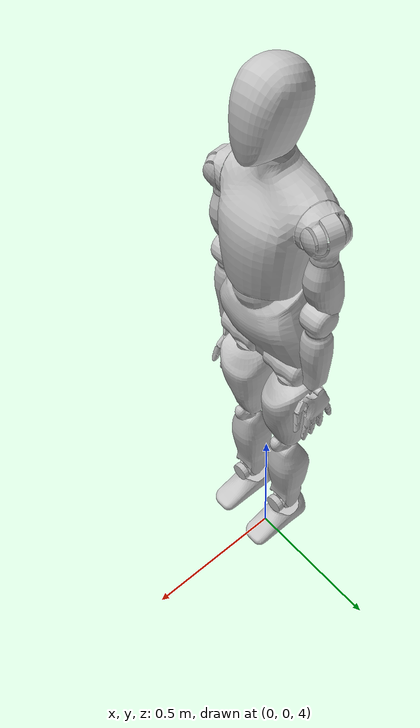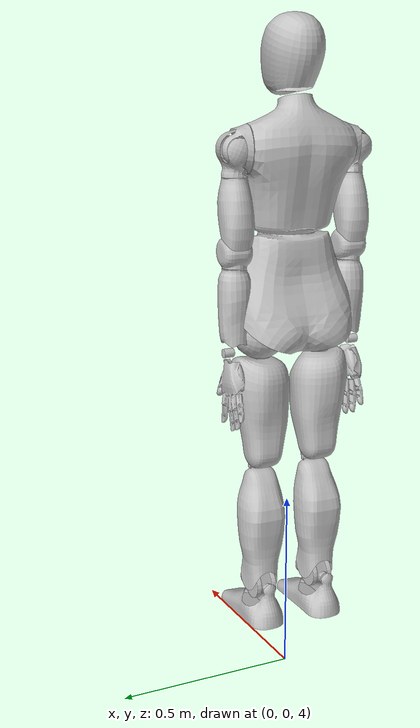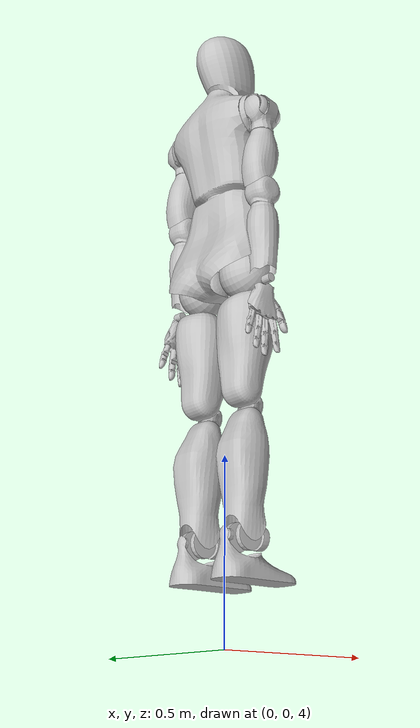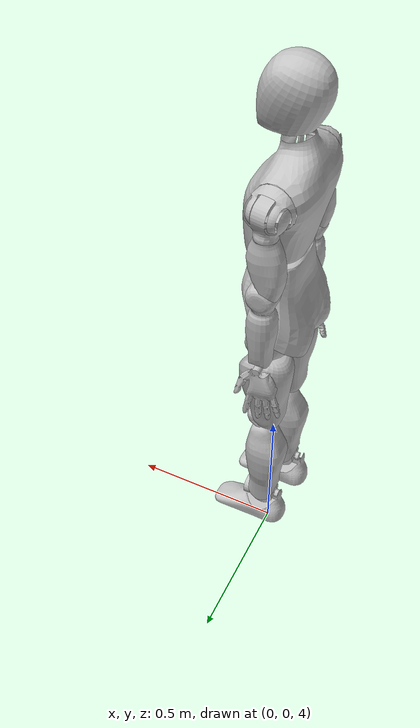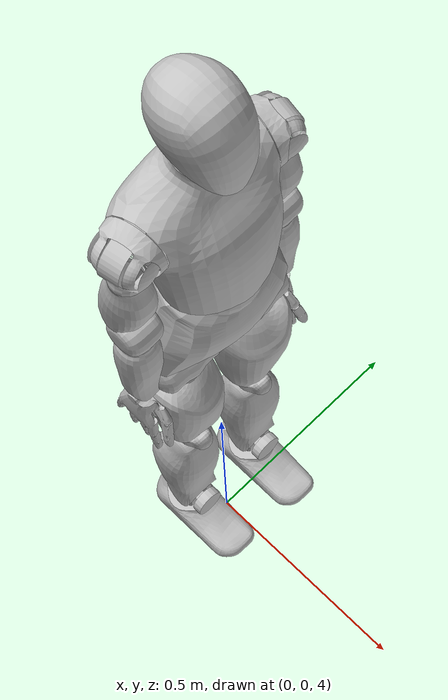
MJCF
<mujoco model="neo_beta">
  <default>
      <geom solref="0.01 0.9" solimp="0.8 0.9 0.01" friction="1.0 0.05 0.001"/>
  </default>
  <option integrator="RK4" iterations="50"/>
  <compiler angle="radian" meshdir="./meshes/lod1/"/>
 <asset>
    <mesh name="PelvisCover" file="PelvisCover.obj" scale="1e-05 1e-05 1e-05"/>
    <mesh name="RightHipCover" file="RightHipCover.obj" scale="1e-05 1e-05 1e-05"/>
    <mesh name="RightThighCover" file="RightThighCover.obj" scale="1e-05 1e-05 1e-05"/>
    <mesh name="RightKneecapCover" file="RightKneecapCover.obj" scale="1e-05 1e-05 1e-05"/>
    <mesh name="RightShinCover" file="RightShinCover.obj" scale="1e-05 1e-05 1e-05"/>
    <mesh name="RightAnkleCovers" file="RightAnkleCovers.obj" scale="1e-05 1e-05 1e-05"/>
    <mesh name="RightFootCover" file="RightFootCover.obj" scale="1e-05 1e-05 1e-05"/>
    <mesh name="LeftHipCover" file="LeftHipCover.obj" scale="1e-05 1e-05 1e-05"/>
    <mesh name="LeftThighCover" file="LeftThighCover.obj" scale="1e-05 1e-05 1e-05"/>
    <mesh name="LeftKneecapCover" file="LeftKneecapCover.obj" scale="1e-05 1e-05 1e-05"/>
    <mesh name="LeftShinCover" file="LeftShinCover.obj" scale="1e-05 1e-05 1e-05"/>
    <mesh name="LeftAnkleCovers" file="LeftAnkleCovers.obj" scale="1e-05 1e-05 1e-05"/>
    <mesh name="LeftFootCover" file="LeftFootCover.obj" scale="1e-05 1e-05 1e-05"/>
    <mesh name="TorsoCover" file="TorsoCover.obj" scale="1e-05 1e-05 1e-05"/>
    <mesh name="RightScapulaCover" file="RightScapulaCover.obj" scale="1e-05 1e-05 1e-05"/>
    <mesh name="RightShoulderCover" file="RightShoulderCover.obj" scale="1e-05 1e-05 1e-05"/>
    <mesh name="RightUpperArmCover" file="RightUpperArmCover.obj" scale="1e-05 1e-05 1e-05"/>
    <mesh name="RightElbowCover" file="RightElbowCover.obj" scale="1e-05 1e-05 1e-05"/>
    <mesh name="RightLowerArmCover" file="RightLowerArmCover.obj" scale="1e-05 1e-05 1e-05"/>
    <mesh name="RightHand" file="RightHand.obj" scale="0.01 0.01 0.01"/>
    <mesh name="LeftScapulaCover" file="LeftScapulaCover.obj" scale="1e-05 1e-05 1e-05"/>
    <mesh name="LeftShoulderCover" file="LeftShoulderCover.obj" scale="1e-05 1e-05 1e-05"/>
    <mesh name="LeftUpperArmCover" file="LeftUpperArmCover.obj" scale="1e-05 1e-05 1e-05"/>
    <mesh name="LeftElbowCover" file="LeftElbowCover.obj" scale="1e-05 1e-05 1e-05"/>
    <mesh name="LeftLowerArmCover" file="LeftLowerArmCover.obj" scale="1e-05 1e-05 1e-05"/>
    <mesh name="LeftHand" file="LeftHand.obj" scale="0.01 0.01 0.01"/>
    <mesh name="Neck_Z_Cover" file="Neck_Z_Cover.obj" scale="1e-05 1e-05 1e-05"/>
    <mesh name="HeadCover_Combined" file="HeadCover_Combined.obj" scale="1e-05 1e-05 1e-05"/>
  </asset>

  <worldbody>
    <body name="link_pelvis" pos="0 0 5">
      <inertial pos="0.0073145 0.00199007 0.120851" quat="0.63988 0.76686 0.0324651 -0.0377523" mass="6.87077" diaginertia="0.0736053 0.0456795 0.0437648"/>
      <joint name="world_joint" type="free" limited="false" actuatorfrclimited="false"/>
      <geom type="mesh" rgba="0.752941 0.752941 0.752941 1" mesh="PelvisCover"/>
      <body name="link_r_upper_hip" pos="0 -0.0895 0">
        <inertial pos="-0.00766357 0.00071556 -0.00124386" quat="0.508392 0.488927 -0.498376 0.504092" mass="0.361073" diaginertia="0.000647876 0.000620611 0.000402843"/>
        <joint name="j_r_leg_hip_y" pos="0 0 0" axis="0 1 0" range="-1.8326 0.5236" actuatorfrcrange="-211.11 211.11"/>
        <geom type="mesh" rgba="0.752941 0.752941 0.752941 1" mesh="RightHipCover"/>
        <body name="link_r_lower_hip">
          <inertial pos="-0.0164355 -0.00059357 -0.0560469" quat="0.914258 0.0623084 -0.21343 -0.338671" mass="0.765414" diaginertia="0.00181477 0.00180724 0.000343865"/>
          <joint name="j_r_leg_hip_x" pos="0 0 0" axis="1 0 0" range="-0.7418 0.3927" actuatorfrcrange="-211.11 211.11"/>
          <body name="link_r_thigh">
            <inertial pos="-0.00369548 -0.00643054 -0.200002" quat="0.708472 0.0648774 -0.0359654 0.70183" mass="2.50609" diaginertia="0.0133149 0.0120923 0.0047201"/>
            <joint name="j_r_leg_hip_z" pos="0 0 0" axis="0 0 1" range="-0.7854 0.7854" actuatorfrcrange="-165.72 165.72"/>
            <geom type="mesh" rgba="0.752941 0.752941 0.752941 1" mesh="RightThighCover"/>
            <body name="link_r_patella" pos="-0.0145 0 -0.337">
              <inertial pos="0.00691184 0.00966885 -0.0220421" quat="0.696181 -0.0721002 -0.109761 0.705752" mass="0.295912" diaginertia="0.000537903 0.000478921 0.000127717"/>
              <joint name="j_r_leg_upperknee_y" pos="0 0 0" axis="0 1 0" range="-0.0873 1.7401" actuatorfrcrange="-231.87 231.87"/>
              <geom type="mesh" rgba="0.752941 0.752941 0.752941 1" mesh="RightKneecapCover"/>
              <body name="link_r_shin" pos="0.015 0 -0.092">
                <inertial pos="-0.0133649 0.00032171 -0.125637" quat="0.699596 0.00697769 0.00695481 0.714471" mass="2.59562" diaginertia="0.01992 0.0193467 0.00323459"/>
                <joint name="j_r_leg_lowerknee_y" pos="0 0 0" axis="0 1 0" range="-0.0513 1.0236" actuatorfrcrange="-185.49 185.49"/>
                <geom type="mesh" rgba="0.752941 0.752941 0.752941 1" mesh="RightShinCover"/>
                <body name="link_r_ankle" pos="-0.0155 0 -0.301">
                  <inertial pos="0.00331621 9.587e-05 -0.00258008" quat="0.00995169 0.706816 0.00972423 0.707261" mass="0.196791" diaginertia="0.000140871 0.000126849 3.01899e-05"/>
                  <joint name="j_r_ankle_y" pos="0 0 0" axis="0 1 0" range="-0.7854 0.6981" actuatorfrcrange="-276.02 276.02"/>
                  <geom type="mesh" rgba="0.752941 0.752941 0.752941 1" mesh="RightAnkleCovers"/>
                  <body name="link_r_foot">
                    <inertial pos="0.021541 0.00038918 -0.0772985" quat="0.457423 0.53338 0.540115 0.463191" mass="1.43586" diaginertia="0.00550513 0.00503884 0.0021677"/>
                    <joint name="j_r_ankle_x" pos="0 0 0" axis="1 0 0" range="-0.5236 0.5236" actuatorfrcrange="-169.92 169.92"/>
                    <geom pos="-0.0095 0 0" quat="1 0 0 0" type="mesh" rgba="0.752941 0.752941 0.752941 1" mesh="RightFootCover"/>
                    <site name="right_foot_geom_site" type="box" pos="0.05 0.0 -0.11" size="0.125 0.05 0.005" rgba="1 0 0 0"/>
                  </body>
                </body>
              </body>
            </body>
          </body>
        </body>
      </body>
      <body name="link_l_upper_hip" pos="0 0.0895 0">
        <inertial pos="-0.00766357 0.00071556 -0.00124386" quat="0.508392 0.488927 -0.498376 0.504092" mass="0.361073" diaginertia="0.000647876 0.000620611 0.000402843"/>
        <joint name="j_l_leg_hip_y" pos="0 0 0" axis="0 1 0" range="-1.8326 0.5236" actuatorfrcrange="-211.11 211.11"/>
        <geom type="mesh" rgba="0.752941 0.752941 0.752941 1" mesh="LeftHipCover"/>
        <body name="link_l_lower_hip">
          <inertial pos="-0.01651 0.00053942 -0.0559597" quat="0.923084 -0.0572306 -0.215327 0.313487" mass="0.769808" diaginertia="0.00183017 0.00182234 0.000345358"/>
          <joint name="j_l_leg_hip_x" pos="0 0 0" axis="1 0 0" range="-0.3927 0.7418" actuatorfrcrange="-211.11 211.11"/>
          <body name="link_l_thigh">
            <inertial pos="-0.00317825 0.00642675 -0.199717" quat="0.70707 -0.038761 0.0625968 0.7033" mass="2.50078" diaginertia="0.0133375 0.0121132 0.00471309"/>
            <joint name="j_l_leg_hip_z" pos="0 0 0" axis="0 0 1" range="-0.7854 0.7854" actuatorfrcrange="-165.72 165.72"/>
            <geom type="mesh" rgba="0.752941 0.752941 0.752941 1" mesh="LeftThighCover"/>
            <body name="link_l_patella" pos="-0.0145 0 -0.337">
              <inertial pos="0.00867652 -0.00967156 -0.0262857" quat="0.707507 -0.0860211 -0.0722719 0.697719" mass="0.280178" diaginertia="0.000508464 0.000459291 0.000123725"/>
              <joint name="j_l_leg_upperknee_y" pos="0 0 0" axis="0 1 0" range="-0.0873 1.7401" actuatorfrcrange="-231.87 231.87"/>
              <geom type="mesh" rgba="0.752941 0.752941 0.752941 1" mesh="LeftKneecapCover"/>
              <body name="link_l_shin" pos="0.015 0 -0.092">
                <inertial pos="-0.013228 -0.00023049 -0.124134" quat="0.708958 0.00926938 0.00714237 0.705154" mass="2.55274" diaginertia="0.0191882 0.0186053 0.00323647"/>
                <joint name="j_l_leg_lowerknee_y" pos="0 0 0" axis="0 1 0" range="-0.0513 1.0236" actuatorfrcrange="-185.49 185.49"/>
                <geom type="mesh" rgba="0.752941 0.752941 0.752941 1" mesh="LeftShinCover"/>
                <body name="link_l_ankle" pos="-0.0155 0 -0.301">
                  <inertial pos="0.00331621 -9.587e-05 -0.00258008" quat="-0.00995169 0.706816 -0.00972423 0.707261" mass="0.196791" diaginertia="0.000140871 0.000126849 3.01899e-05"/>
                  <joint name="j_l_ankle_y" pos="0 0 0" axis="0 1 0" range="-0.7854 0.6981" actuatorfrcrange="-276.02 276.02"/>
                  <geom type="mesh" rgba="0.752941 0.752941 0.752941 1" mesh="LeftAnkleCovers"/>
                  <body name="link_l_foot">
                    <inertial pos="0.0222222 -0.00034418 -0.0779496" quat="0.470407 0.533977 0.528741 0.462621" mass="1.42112" diaginertia="0.00536117 0.00495355 0.00210631"/>
                    <joint name="j_l_ankle_x" pos="0 0 0" axis="1 0 0" range="-0.5236 0.5236" actuatorfrcrange="-169.92 169.92"/>
                    <geom type="mesh" rgba="0.752941 0.752941 0.752941 1" mesh="LeftFootCover"/>
                    <site name="left_foot_geom_site" type="box" pos="0.05 0.0 -0.11" size="0.125 0.05 0.005" rgba="1 0 0 0"/>
                  </body>
                </body>
              </body>
            </body>
          </body>
        </body>
      </body>
      <body name="link_abdomen" pos="0.02216 0 0.243">
        <inertial pos="0.00070986 -0.0003245 0.0135796" quat="0.999708 -0.0160415 -0.0179914 -0.00169752" mass="0.262993" diaginertia="0.000186555 0.000130355 0.00010592"/>
        <joint name="j_torso_y" pos="0 0 0" axis="0 1 0" range="-0.0873 0.6981" actuatorfrcrange="-282.59 282.59"/>
        <body name="link_torso">
          <inertial pos="-0.0281692 -0.00096531 0.140662" quat="0.981972 0.0231882 -0.172496 -0.0737526" mass="6.26354" diaginertia="0.0434474 0.0375336 0.0340869"/>
          <joint name="j_torso_z" pos="0 0 0" axis="0 0 1" range="-1.0472 1.0472" actuatorfrcrange="-227.9 227.9"/>
          <geom type="mesh" rgba="0.752941 0.752941 0.752941 1" mesh="TorsoCover"/>
          <body name="link_r_scapula" pos="-0.03511 -0.1717 0.2377" quat="0.996195 0 0 0.0871543">
            <inertial pos="-0.0002307 0.0745582 0.00134092" quat="0.704281 0.70906 0.0219027 -0.0272377" mass="1.65249" diaginertia="0.0051238 0.00507641 0.00239145"/>
            <joint name="j_r_shoulder_y" pos="0 0 0" axis="0 1 0" range="-2.3562 1.0472" actuatorfrcrange="-103.77 103.77"/>
            <geom type="mesh" rgba="0.752941 0.752941 0.752941 1" mesh="RightScapulaCover"/>
            <body name="link_r_shoulder">
              <inertial pos="1.271e-05 -0.00169746 -0.021314" quat="0.706216 0.00253531 -0.00773158 0.707949" mass="0.226886" diaginertia="0.00026914 0.000208724 0.000126566"/>
              <joint name="j_r_shoulder_x" pos="0 0 0" axis="1 0 0" range="-2.0944 0.0873" actuatorfrcrange="-133.43 133.43"/>
              <geom type="mesh" rgba="0.752941 0.752941 0.752941 1" mesh="RightShoulderCover"/>
              <body name="link_r_upper_arm" quat="0.996195 0 0 -0.0871543">
                <inertial pos="-0.00399127 -3.687e-05 -0.158461" quat="0.708463 0.0104449 0.0113308 0.70558" mass="1.12649" diaginertia="0.00515168 0.00499262 0.000754445"/>
                <joint name="j_r_shoulder_z" pos="0 0 0" axis="0 0 1" range="-0.5236 1.6581" actuatorfrcrange="-104.24 104.24"/>
                <geom type="mesh" rgba="0.752941 0.752941 0.752941 1" mesh="RightUpperArmCover"/>
                <body name="link_r_elbow" pos="0 0 -0.263">
                  <inertial pos="-0.00050533 1.761e-05 -0.013781" quat="0.999969 -0.0007112 -0.00786327 -2.55364e-05" mass="0.157484" diaginertia="0.000130541 0.00011477 8.66591e-05"/>
                  <joint name="j_r_elbow_y" pos="0 0 0" axis="0 1 0" range="-2.0944 0" actuatorfrcrange="-95.41 95.41"/>
                  <geom type="mesh" rgba="0.752941 0.752941 0.752941 1" mesh="RightElbowCover"/>
                  <body name="link_r_lower_arm">
                    <inertial pos="0.00020952 6.849e-05 -0.147053" quat="0.999674 0.000917821 -0.00232824 0.02539" mass="1.191" diaginertia="0.00525646 0.00519075 0.000632024"/>
                    <joint name="j_r_elbow_z" pos="0 0 0" axis="0 0 1" range="-1.5708 0.7854" actuatorfrcrange="-60.12 60.12"/>
                    <geom type="mesh" rgba="0.752941 0.752941 0.752941 1" mesh="RightLowerArmCover"/>
                    <body name="link_r_wrist" pos="0 0 -0.268">
                      <inertial pos="0.00033557 0.00378767 0.00628441" quat="0.716106 -0.0453887 -0.044902 0.695065" mass="0.0271772" diaginertia="4.34089e-06 3.33681e-06 2.86229e-06"/>
                      <joint name="j_r_wrist_x" pos="0 0 0" axis="1 0 0" range="-0.5236 1.5708" actuatorfrcrange="-29.35 29.35"/>
                      <body name="link_r_hand" pos="0 0 0" quat="1 0 0 0">
                        <inertial pos="-0.0018672 -0.0074707 -0.0883994" quat="0.662518 0.0559941 0.0786707 0.742795" mass="0.624148" diaginertia="0.00198743 0.00146689 0.000624887"/>
                        <joint name="j_r_wrist_y" pos="0 0 0" axis="0 1 0" range="-0.2618 0.7854" actuatorfrcrange="-27.51 27.51"/>
                        <geom pos="0 0 0" quat="0.999048 0 0.0436194 0" type="mesh" rgba="0.752941 0.752941 0.752941 1" mesh="RightHand"/>
                      </body>
                    </body>
                  </body>
                </body>
              </body>
            </body>
          </body>
          <body name="link_l_scapula" pos="-0.03511 0.1717 0.2377" quat="0.996195 0 0 -0.0871543">
            <inertial pos="0.00017228 -0.0743468 0.00130844" quat="0.707248 0.703402 -0.0531302 0.0469346" mass="1.65555" diaginertia="0.00514273 0.00509914 0.00239101"/>
            <joint name="j_l_shoulder_y" pos="0 0 0" axis="0 1 0" range="-2.3562 1.0472" actuatorfrcrange="-103.77 103.77"/>
            <geom type="mesh" rgba="0.752941 0.752941 0.752941 1" mesh="LeftScapulaCover"/>
            <body name="link_l_shoulder">
              <inertial pos="0.00014092 0.00179768 -0.0213055" quat="0.706611 -0.0073569 0.00263855 0.707559" mass="0.228031" diaginertia="0.000269149 0.000209084 0.000126928"/>
              <joint name="j_l_shoulder_x" pos="0 0 0" axis="1 0 0" range="-0.0873 2.0944" actuatorfrcrange="-133.43 133.43"/>
              <geom type="mesh" rgba="0.752941 0.752941 0.752941 1" mesh="LeftShoulderCover"/>
              <body name="link_l_upper_arm" quat="0.996195 0 0 0.0871543">
                <inertial pos="-0.00423068 -4.654e-05 -0.159021" quat="0.690223 0.0104642 0.0105461 0.723444" mass="1.12429" diaginertia="0.00523963 0.00507581 0.000754696"/>
                <joint name="j_l_shoulder_z" pos="0 0 0" axis="0 0 1" range="-1.6581 0.5236" actuatorfrcrange="-104.24 104.24"/>
                <geom type="mesh" rgba="0.752941 0.752941 0.752941 1" mesh="LeftUpperArmCover"/>
                <body name="link_l_elbow" pos="0 0 -0.263">
                  <inertial pos="-0.00050533 1.761e-05 -0.013781" quat="0.999969 -0.0007112 -0.00786327 -2.55364e-05" mass="0.157484" diaginertia="0.000130541 0.00011477 8.66591e-05"/>
                  <joint name="j_l_elbow_y" pos="0 0 0" axis="0 1 0" range="-2.0944 0" actuatorfrcrange="-95.41 95.41"/>
                  <geom type="mesh" rgba="0.752941 0.752941 0.752941 1" mesh="LeftElbowCover"/>
                  <body name="link_l_lower_arm">
                    <inertial pos="0.00016106 -0.00097128 -0.148465" quat="0.99608 -0.00868978 0.00128943 0.0880241" mass="1.13949" diaginertia="0.00507933 0.00496945 0.000659898"/>
                    <joint name="j_l_elbow_z" pos="0 0 0" axis="0 0 1" range="-0.7854 1.5708" actuatorfrcrange="-60.12 60.12"/>
                    <geom type="mesh" rgba="0.752941 0.752941 0.752941 1" mesh="LeftLowerArmCover"/>
                    <body name="link_l_wrist" pos="0 0 -0.268">
                      <inertial pos="0.00033557 -0.00378767 -0.00628441" quat="0.695065 0.044902 0.0453887 0.716106" mass="0.0271772" diaginertia="4.34089e-06 3.33681e-06 2.86229e-06"/>
                      <joint name="j_l_wrist_x" pos="0 0 0" axis="1 0 0" range="-1.5708 0.5236" actuatorfrcrange="-29.35 29.35"/>
                      <body name="link_l_hand">
                        <inertial pos="-0.0018672 0.0074707 -0.0883994" quat="0.751548 0.0508485 0.0773003 0.653157" mass="0.624148" diaginertia="0.00199008 0.00146259 0.000626539"/>
                        <joint name="j_l_wrist_y" pos="0 0 0" axis="0 1 0" range="-0.2618 0.7854" actuatorfrcrange="-27.51 27.51"/>
                        <geom pos="0 0 0" quat="0.999048 0 0.0436194 0" type="mesh" rgba="0.752941 0.752941 0.752941 1" mesh="LeftHand"/>
                      </body>
                    </body>
                  </body>
                </body>
              </body>
            </body>
          </body>
          <body name="link_head_z" pos="-0.06729 0 0.25503" quat="0.991445 0 0.130526 0">
            <inertial pos="0.01874 0.00017734 0.0716711" quat="0.720498 0.0939897 0.10889 0.678374" mass="0.378769" diaginertia="0.000510047 0.000474476 0.000178717"/>
            <joint name="j_head_z" pos="0 0 0" axis="0 0 1" range="-0.5236 0.5236" actuatorfrcrange="-4.66 4.66"/>
            <geom type="mesh" rgba="0.752941 0.752941 0.752941 1" mesh="Neck_Z_Cover"/>
            <body name="link_head_xy" pos="0 0 0.113214" quat="0.991445 0 -0.130526 0">
              <inertial pos="0.00066161 -0.0021605 0.00714253" quat="-0.025404 0.672727 0.00915276 0.739398" mass="0.0368024" diaginertia="1.94889e-05 1.80055e-05 1.07656e-05"/>
              <joint name="j_head_y" pos="0 0 0" axis="0 1 0" range="-0.4363 0.6981" actuatorfrcrange="-11.11 11.11"/>
              <body name="link_head" quat="0.991445 0 0.130526 0">
                <inertial pos="-0.00667401 0.00699665 0.107923" quat="0.659125 -0.269698 -0.248297 0.656632" mass="1.54965" diaginertia="0.00645602 0.00517767 0.0041212"/>
                <joint name="j_head_x" pos="0 0 0" axis="1 0 0" range="-0.384 0.384" actuatorfrcrange="-6.94 6.94"/>
                <geom pos="0 0 0" quat="0.999048 0 -0.0436194 0" type="mesh" rgba="0.752941 0.752941 0.752941 1" mesh="HeadCover_Combined"/>
              </body>
            </body>
          </body>
        </body>
      </body>
    </body>
  </worldbody>
  <actuator>
      <motor name="j_r_leg_hip_y" joint="j_r_leg_hip_y" ctrlrange="-100 100"/>
      <motor name="j_r_leg_hip_x" joint="j_r_leg_hip_x" ctrlrange="-100 100"/>
      <motor name="j_r_leg_hip_z" joint="j_r_leg_hip_z" ctrlrange="-100 100"/>
      <motor name="j_r_leg_upperknee_y" joint="j_r_leg_upperknee_y" ctrlrange="-100 100"/>
      <motor name="j_r_ankle_y" joint="j_r_ankle_y" ctrlrange="-100 100"/>
      <motor name="j_r_ankle_x" joint="j_r_ankle_x" ctrlrange="-100 100"/>
      <motor name="j_l_leg_hip_y" joint="j_l_leg_hip_y" ctrlrange="-100 100"/>
      <motor name="j_l_leg_hip_x" joint="j_l_leg_hip_x" ctrlrange="-100 100"/>
      <motor name="j_l_leg_hip_z" joint="j_l_leg_hip_z" ctrlrange="-100 100"/>
      <motor name="j_l_leg_upperknee_y" joint="j_l_leg_upperknee_y" ctrlrange="-100 100"/>
      <motor name="j_l_ankle_y" joint="j_l_ankle_y" ctrlrange="-100 100"/>
      <motor name="j_l_ankle_x" joint="j_l_ankle_x" ctrlrange="-100 100"/>
      <motor name="j_torso_y" joint="j_torso_y" ctrlrange="-100 100"/>
      <motor name="j_torso_z" joint="j_torso_z" ctrlrange="-100 100"/>
      <motor name="j_r_shoulder_y" joint="j_r_shoulder_y" ctrlrange="-100 100"/>
      <motor name="j_r_shoulder_x" joint="j_r_shoulder_x" ctrlrange="-100 100"/>
      <motor name="j_r_shoulder_z" joint="j_r_shoulder_z" ctrlrange="-100 100"/>
      <motor name="j_r_elbow_y" joint="j_r_elbow_y" ctrlrange="-100 100"/>
      <motor name="j_r_elbow_z" joint="j_r_elbow_z" ctrlrange="-100 100"/>
      <motor name="j_r_wrist_x" joint="j_r_wrist_x" ctrlrange="-100 100"/>
      <motor name="j_r_wrist_y" joint="j_r_wrist_y" ctrlrange="-100 100"/>
      <motor name="j_l_shoulder_y" joint="j_l_shoulder_y" ctrlrange="-100 100"/>
      <motor name="j_l_shoulder_x" joint="j_l_shoulder_x" ctrlrange="-100 100"/>
      <motor name="j_l_shoulder_z" joint="j_l_shoulder_z" ctrlrange="-100 100"/>
      <motor name="j_l_elbow_y" joint="j_l_elbow_y" ctrlrange="-100 100"/>
      <motor name="j_l_elbow_z" joint="j_l_elbow_z" ctrlrange="-100 100"/>
      <motor name="j_l_wrist_x" joint="j_l_wrist_x" ctrlrange="-100 100"/>
      <motor name="j_l_wrist_y" joint="j_l_wrist_y" ctrlrange="-100 100"/>
      <motor name="j_head_z" joint="j_head_z" ctrlrange="-100 100"/>
      <motor name="j_head_y" joint="j_head_y" ctrlrange="-100 100"/>
      <motor name="j_head_x" joint="j_head_x" ctrlrange="-100 100"/>
  </actuator>
  <contact>
    <exclude name="head1"
      body1="link_head_z"
      body2="link_head_xy"
      />
    <exclude name="head2"
      body1="link_head_z"
      body2="link_head"
      />
    <exclude name="head3"
      body1="link_torso"
      body2="link_head_xy"
      />
    <exclude name="head4"
      body1="link_torso"
      body2="link_head"
      />
    <exclude name="torso"
      body1="link_torso"
      body2="link_pelvis"
      />
    <exclude name="left_shoulder1"
      body1="link_torso"
      body2="link_l_shoulder"
      />
    <exclude name="left_shoulder2"
      body1="link_l_scapula"
      body2="link_l_upper_arm"
      />
    <exclude name="right_shoulder1"
      body1="link_torso"
      body2="link_r_shoulder"
      />
    <exclude name="right_shoulder2"
      body1="link_r_scapula"
      body2="link_r_upper_arm"
      />
    <exclude name="left_wrist"
      body1="link_l_lower_arm"
      body2="link_l_wrist"
      />
    <exclude name="right_wrist"
      body1="link_r_lower_arm"
      body2="link_r_wrist"
      />
    <exclude name="left_leg_hip1"
      body1="link_pelvis"
      body2="link_l_lower_hip"
      />
    <exclude name="left_leg_hip2"
      body1="link_l_upper_hip"
      body2="link_l_thigh"
      />
    <exclude name="right_leg_hip1"
      body1="link_pelvis"
      body2="link_r_lower_hip"
      />
    <exclude name="right_leg_hip2"
      body1="link_r_upper_hip"
      body2="link_r_thigh"
      />
    <exclude name="right_upper_knee"
      body1="link_r_thigh"
      body2="link_r_patella"
      />
    <exclude name="right_lower_knee"
      body1="link_r_patella"
      body2="link_r_shin"
      />
    <exclude name="left_upper_knee"
      body1="link_l_thigh"
      body2="link_l_patella"
      />
    <exclude name="left_lower_knee"
      body1="link_l_patella"
      body2="link_l_shin"
      />
  </contact>
  <equality>
      <joint joint1="j_r_leg_upperknee_y" joint2="j_r_leg_lowerknee_y" polycoef="0 1.7 0 0 0" solref="0.004 1"></joint>
      <joint joint1="j_l_leg_upperknee_y" joint2="j_l_leg_lowerknee_y" polycoef="0 1.7 0 0 0" solref="0.004 1"></joint>
  </equality>
  <sensor>
      <force name="left_foot_force_sensor" site="left_foot_geom_site"/>
      <force name="right_foot_force_sensor" site="right_foot_geom_site"/>
      <touch name="left_foot_touch_sensor" site="left_foot_geom_site"/>
      <touch name="right_foot_touch_sensor" site="right_foot_geom_site"/>
  </sensor>
</mujoco>
